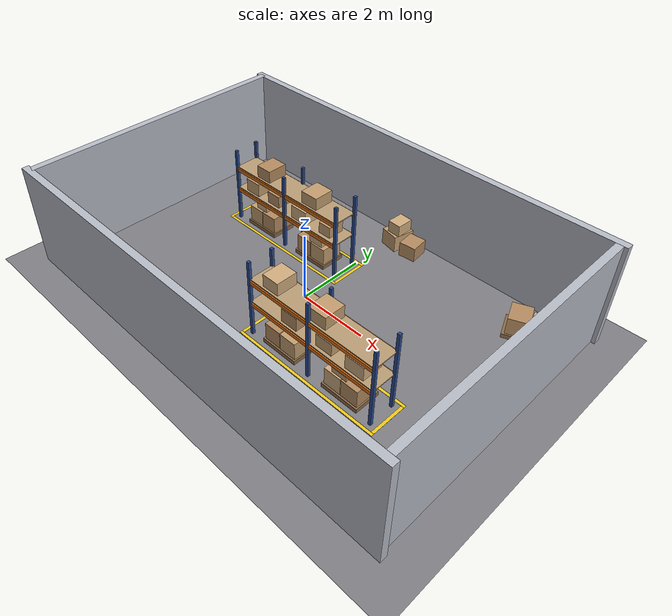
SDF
<?xml version="1.0"?>
<sdf version="1.10">
  <world name="warehouse">

    <physics name="1ms" type="ignored">
      <max_step_size>0.001</max_step_size>
      <real_time_factor>1.0</real_time_factor>
    </physics>

    <!-- standard gz-sim systems (physics, commands, rendering, sensors, imu) -->
    <plugin filename="gz-sim-physics-system" name="gz::sim::systems::Physics"/>
    <plugin filename="gz-sim-user-commands-system" name="gz::sim::systems::UserCommands"/>
    <plugin filename="gz-sim-scene-broadcaster-system" name="gz::sim::systems::SceneBroadcaster"/>
    <plugin filename="gz-sim-sensors-system" name="gz::sim::systems::Sensors">
      <render_engine>ogre2</render_engine>
    </plugin>
    <plugin filename="gz-sim-imu-system" name="gz::sim::systems::Imu"/>

    <scene>
      <ambient>0.4 0.4 0.4 1</ambient>
      <background>0.55 0.6 0.65 1</background>
    </scene>

    <light type="directional" name="sun">
      <cast_shadows>true</cast_shadows>
      <pose>0 0 10 0 0 0</pose>
      <diffuse>0.7 0.7 0.68 1</diffuse>
      <specular>0.2 0.2 0.2 1</specular>
      <direction>-0.4 0.2 -0.9</direction>
    </light>
    <light type="point" name="hall_light_west">
      <cast_shadows>false</cast_shadows>
      <pose>-3 0 2.7 0 0 0</pose>
      <diffuse>1.0 0.97 0.88 1</diffuse>
      <specular>0.1 0.1 0.1 1</specular>
      <attenuation><range>15</range><constant>0.4</constant><linear>0.08</linear><quadratic>0.01</quadratic></attenuation>
    </light>
    <light type="point" name="hall_light_east">
      <cast_shadows>false</cast_shadows>
      <pose>3 0 2.7 0 0 0</pose>
      <diffuse>1.0 0.97 0.88 1</diffuse>
      <specular>0.1 0.1 0.1 1</specular>
      <attenuation><range>15</range><constant>0.4</constant><linear>0.08</linear><quadratic>0.01</quadratic></attenuation>
    </light>

    <!-- concrete floor -->
    <model name="ground_plane">
      <static>true</static>
      <link name="link">
        <collision name="collision">
          <geometry><plane><normal>0 0 1</normal><size>100 100</size></plane></geometry>
        </collision>
        <visual name="visual">
          <geometry><plane><normal>0 0 1</normal><size>100 100</size></plane></geometry>
          <material><ambient>0.5 0.5 0.52 1</ambient><diffuse>0.5 0.5 0.52 1</diffuse><specular>0.05 0.05 0.05 1</specular></material>
        </visual>
      </link>
    </model>

    <!-- yellow floor markings (visual only, no collision — lidar/physics ignore them) -->
    <model name="floor_markings">
      <static>true</static>
      <link name="l">
        <!-- rack A zone -->
        <visual name="a_s"><pose>-2 0.95 0.0015 0 0 0</pose><geometry><box><size>4.4 0.08 0.003</size></box></geometry>
          <material><ambient>0.95 0.8 0.1 1</ambient><diffuse>0.95 0.8 0.1 1</diffuse></material></visual>
        <visual name="a_n"><pose>-2 2.05 0.0015 0 0 0</pose><geometry><box><size>4.4 0.08 0.003</size></box></geometry>
          <material><ambient>0.95 0.8 0.1 1</ambient><diffuse>0.95 0.8 0.1 1</diffuse></material></visual>
        <visual name="a_w"><pose>-4.16 1.5 0.0015 0 0 0</pose><geometry><box><size>0.08 1.18 0.003</size></box></geometry>
          <material><ambient>0.95 0.8 0.1 1</ambient><diffuse>0.95 0.8 0.1 1</diffuse></material></visual>
        <visual name="a_e"><pose>0.16 1.5 0.0015 0 0 0</pose><geometry><box><size>0.08 1.18 0.003</size></box></geometry>
          <material><ambient>0.95 0.8 0.1 1</ambient><diffuse>0.95 0.8 0.1 1</diffuse></material></visual>
        <!-- rack B zone -->
        <visual name="b_s"><pose>2 -2.05 0.0015 0 0 0</pose><geometry><box><size>4.4 0.08 0.003</size></box></geometry>
          <material><ambient>0.95 0.8 0.1 1</ambient><diffuse>0.95 0.8 0.1 1</diffuse></material></visual>
        <visual name="b_n"><pose>2 -0.95 0.0015 0 0 0</pose><geometry><box><size>4.4 0.08 0.003</size></box></geometry>
          <material><ambient>0.95 0.8 0.1 1</ambient><diffuse>0.95 0.8 0.1 1</diffuse></material></visual>
        <visual name="b_w"><pose>-0.16 -1.5 0.0015 0 0 0</pose><geometry><box><size>0.08 1.18 0.003</size></box></geometry>
          <material><ambient>0.95 0.8 0.1 1</ambient><diffuse>0.95 0.8 0.1 1</diffuse></material></visual>
        <visual name="b_e"><pose>4.16 -1.5 0.0015 0 0 0</pose><geometry><box><size>0.08 1.18 0.003</size></box></geometry>
          <material><ambient>0.95 0.8 0.1 1</ambient><diffuse>0.95 0.8 0.1 1</diffuse></material></visual>
        <!-- dock apron hatching in front of the east dock door -->
        <visual name="dock_1"><pose>5.4 0 0.0015 0 0 0</pose><geometry><box><size>0.08 2.6 0.003</size></box></geometry>
          <material><ambient>0.95 0.8 0.1 1</ambient><diffuse>0.95 0.8 0.1 1</diffuse></material></visual>
      </link>
    </model>

    <!-- outer walls: 12m x 8m room, 3m high -->
    <model name="wall_north"><static>true</static><pose>0 4 1.5 0 0 0</pose>
      <link name="l"><collision name="c"><geometry><box><size>12.4 0.2 3</size></box></geometry></collision>
        <visual name="v"><geometry><box><size>12.4 0.2 3</size></box></geometry>
          <material><ambient>0.72 0.74 0.78 1</ambient><diffuse>0.72 0.74 0.78 1</diffuse></material></visual></link></model>
    <model name="wall_south"><static>true</static><pose>0 -4 1.5 0 0 0</pose>
      <link name="l"><collision name="c"><geometry><box><size>12.4 0.2 3</size></box></geometry></collision>
        <visual name="v"><geometry><box><size>12.4 0.2 3</size></box></geometry>
          <material><ambient>0.72 0.74 0.78 1</ambient><diffuse>0.72 0.74 0.78 1</diffuse></material></visual></link></model>
    <model name="wall_east"><static>true</static><pose>6 0 1.5 0 0 0</pose>
      <link name="l"><collision name="c"><geometry><box><size>0.2 8 3</size></box></geometry></collision>
        <visual name="v"><geometry><box><size>0.2 8 3</size></box></geometry>
          <material><ambient>0.72 0.74 0.78 1</ambient><diffuse>0.72 0.74 0.78 1</diffuse></material></visual></link></model>
    <model name="wall_west"><static>true</static><pose>-6 0 1.5 0 0 0</pose>
      <link name="l"><collision name="c"><geometry><box><size>0.2 8 3</size></box></geometry></collision>
        <visual name="v"><geometry><box><size>0.2 8 3</size></box></geometry>
          <material><ambient>0.72 0.74 0.78 1</ambient><diffuse>0.72 0.74 0.78 1</diffuse></material></visual></link></model>

    <!-- roller dock door on the east wall (visual only, sits on the inner face) -->
    <model name="dock_door_east">
      <static>true</static><pose>5.885 0 0 0 0 0</pose>
      <link name="l">
        <visual name="panel"><pose>0 0 1.1 0 0 0</pose><geometry><box><size>0.03 2.6 2.2</size></box></geometry>
          <material><ambient>0.42 0.47 0.52 1</ambient><diffuse>0.42 0.47 0.52 1</diffuse></material></visual>
        <visual name="lintel"><pose>0 0 2.3 0 0 0</pose><geometry><box><size>0.05 2.8 0.2</size></box></geometry>
          <material><ambient>0.3 0.34 0.38 1</ambient><diffuse>0.3 0.34 0.38 1</diffuse></material></visual>
      </link>
    </model>

    <!-- ============ RACK A (center -2, 1.5) ============ -->
    <model name="rack_a">
      <static>true</static><pose>-2 1.5 0 0 0 0</pose>
      <link name="l">
        <!-- one simple collision box for the whole rack -->
        <collision name="c"><pose>0 0 1.15 0 0 0</pose><geometry><box><size>4.0 0.8 2.3</size></box></geometry></collision>
        <!-- steel uprights (3 frames x 2 posts) -->
        <visual name="p1"><pose>-1.96 -0.36 1.15 0 0 0</pose><geometry><box><size>0.08 0.08 2.3</size></box></geometry>
          <material><ambient>0.16 0.28 0.55 1</ambient><diffuse>0.16 0.28 0.55 1</diffuse></material></visual>
        <visual name="p2"><pose>-1.96 0.36 1.15 0 0 0</pose><geometry><box><size>0.08 0.08 2.3</size></box></geometry>
          <material><ambient>0.16 0.28 0.55 1</ambient><diffuse>0.16 0.28 0.55 1</diffuse></material></visual>
        <visual name="p3"><pose>0 -0.36 1.15 0 0 0</pose><geometry><box><size>0.08 0.08 2.3</size></box></geometry>
          <material><ambient>0.16 0.28 0.55 1</ambient><diffuse>0.16 0.28 0.55 1</diffuse></material></visual>
        <visual name="p4"><pose>0 0.36 1.15 0 0 0</pose><geometry><box><size>0.08 0.08 2.3</size></box></geometry>
          <material><ambient>0.16 0.28 0.55 1</ambient><diffuse>0.16 0.28 0.55 1</diffuse></material></visual>
        <visual name="p5"><pose>1.96 -0.36 1.15 0 0 0</pose><geometry><box><size>0.08 0.08 2.3</size></box></geometry>
          <material><ambient>0.16 0.28 0.55 1</ambient><diffuse>0.16 0.28 0.55 1</diffuse></material></visual>
        <visual name="p6"><pose>1.96 0.36 1.15 0 0 0</pose><geometry><box><size>0.08 0.08 2.3</size></box></geometry>
          <material><ambient>0.16 0.28 0.55 1</ambient><diffuse>0.16 0.28 0.55 1</diffuse></material></visual>
        <!-- orange beams, two levels -->
        <visual name="bm1f"><pose>0 -0.36 1.0 0 0 0</pose><geometry><box><size>3.92 0.07 0.1</size></box></geometry>
          <material><ambient>0.9 0.45 0.08 1</ambient><diffuse>0.9 0.45 0.08 1</diffuse></material></visual>
        <visual name="bm1b"><pose>0 0.36 1.0 0 0 0</pose><geometry><box><size>3.92 0.07 0.1</size></box></geometry>
          <material><ambient>0.9 0.45 0.08 1</ambient><diffuse>0.9 0.45 0.08 1</diffuse></material></visual>
        <visual name="bm2f"><pose>0 -0.36 1.7 0 0 0</pose><geometry><box><size>3.92 0.07 0.1</size></box></geometry>
          <material><ambient>0.9 0.45 0.08 1</ambient><diffuse>0.9 0.45 0.08 1</diffuse></material></visual>
        <visual name="bm2b"><pose>0 0.36 1.7 0 0 0</pose><geometry><box><size>3.92 0.07 0.1</size></box></geometry>
          <material><ambient>0.9 0.45 0.08 1</ambient><diffuse>0.9 0.45 0.08 1</diffuse></material></visual>
        <!-- plywood decks -->
        <visual name="dk1"><pose>0 0 1.065 0 0 0</pose><geometry><box><size>3.92 0.72 0.03</size></box></geometry>
          <material><ambient>0.73 0.62 0.46 1</ambient><diffuse>0.73 0.62 0.46 1</diffuse></material></visual>
        <visual name="dk2"><pose>0 0 1.765 0 0 0</pose><geometry><box><size>3.92 0.72 0.03</size></box></geometry>
          <material><ambient>0.73 0.62 0.46 1</ambient><diffuse>0.73 0.62 0.46 1</diffuse></material></visual>
        <!-- ground level: wooden pallets + cardboard (this level must stay full: the lidar scans it) -->
        <visual name="pal1"><pose>-1.0 0 0.06 0 0 0</pose><geometry><box><size>1.1 0.75 0.12</size></box></geometry>
          <material><ambient>0.55 0.42 0.28 1</ambient><diffuse>0.55 0.42 0.28 1</diffuse></material></visual>
        <visual name="pal2"><pose>1.0 0 0.06 0 0 0</pose><geometry><box><size>1.1 0.75 0.12</size></box></geometry>
          <material><ambient>0.55 0.42 0.28 1</ambient><diffuse>0.55 0.42 0.28 1</diffuse></material></visual>
        <visual name="gb1"><pose>-1.26 0 0.37 0 0 0</pose><geometry><box><size>0.5 0.65 0.5</size></box></geometry>
          <material><ambient>0.77 0.62 0.44 1</ambient><diffuse>0.77 0.62 0.44 1</diffuse></material></visual>
        <visual name="gb2"><pose>-0.74 0 0.37 0 0 0</pose><geometry><box><size>0.5 0.65 0.5</size></box></geometry>
          <material><ambient>0.71 0.55 0.38 1</ambient><diffuse>0.71 0.55 0.38 1</diffuse></material></visual>
        <visual name="gb3"><pose>-1.1 0 0.795 0 0 0</pose><geometry><box><size>0.4 0.5 0.35</size></box></geometry>
          <material><ambient>0.82 0.68 0.5 1</ambient><diffuse>0.82 0.68 0.5 1</diffuse></material></visual>
        <visual name="gb4"><pose>0.74 0 0.37 0 0 0</pose><geometry><box><size>0.5 0.65 0.5</size></box></geometry>
          <material><ambient>0.71 0.55 0.38 1</ambient><diffuse>0.71 0.55 0.38 1</diffuse></material></visual>
        <visual name="gb5"><pose>1.26 0 0.37 0 0 0</pose><geometry><box><size>0.5 0.65 0.5</size></box></geometry>
          <material><ambient>0.77 0.62 0.44 1</ambient><diffuse>0.77 0.62 0.44 1</diffuse></material></visual>
        <visual name="gb6"><pose>1.15 0 0.795 0 0 0</pose><geometry><box><size>0.45 0.55 0.35</size></box></geometry>
          <material><ambient>0.82 0.68 0.5 1</ambient><diffuse>0.82 0.68 0.5 1</diffuse></material></visual>
        <!-- level-1 cargo -->
        <visual name="s1b1"><pose>-1.4 0 1.28 0 0 0</pose><geometry><box><size>0.5 0.6 0.4</size></box></geometry>
          <material><ambient>0.77 0.62 0.44 1</ambient><diffuse>0.77 0.62 0.44 1</diffuse></material></visual>
        <visual name="s1b2"><pose>-0.55 0 1.26 0 0 0</pose><geometry><box><size>0.45 0.55 0.36</size></box></geometry>
          <material><ambient>0.71 0.55 0.38 1</ambient><diffuse>0.71 0.55 0.38 1</diffuse></material></visual>
        <visual name="s1b3"><pose>0.5 0 1.28 0 0 0</pose><geometry><box><size>0.55 0.6 0.4</size></box></geometry>
          <material><ambient>0.82 0.68 0.5 1</ambient><diffuse>0.82 0.68 0.5 1</diffuse></material></visual>
        <visual name="s1b4"><pose>1.45 0 1.25 0 0 0</pose><geometry><box><size>0.4 0.5 0.34</size></box></geometry>
          <material><ambient>0.77 0.62 0.44 1</ambient><diffuse>0.77 0.62 0.44 1</diffuse></material></visual>
        <!-- level-2 cargo -->
        <visual name="s2b1"><pose>-0.9 0 1.96 0 0 0</pose><geometry><box><size>0.5 0.6 0.36</size></box></geometry>
          <material><ambient>0.71 0.55 0.38 1</ambient><diffuse>0.71 0.55 0.38 1</diffuse></material></visual>
        <visual name="s2b2"><pose>0.9 0 1.96 0 0 0</pose><geometry><box><size>0.55 0.6 0.36</size></box></geometry>
          <material><ambient>0.77 0.62 0.44 1</ambient><diffuse>0.77 0.62 0.44 1</diffuse></material></visual>
      </link>
    </model>

    <!-- ============ RACK B (center 2, -1.5; rotated 180° for variety) ============ -->
    <model name="rack_b">
      <static>true</static><pose>2 -1.5 0 0 0 3.14159</pose>
      <link name="l">
        <collision name="c"><pose>0 0 1.15 0 0 0</pose><geometry><box><size>4.0 0.8 2.3</size></box></geometry></collision>
        <visual name="p1"><pose>-1.96 -0.36 1.15 0 0 0</pose><geometry><box><size>0.08 0.08 2.3</size></box></geometry>
          <material><ambient>0.16 0.28 0.55 1</ambient><diffuse>0.16 0.28 0.55 1</diffuse></material></visual>
        <visual name="p2"><pose>-1.96 0.36 1.15 0 0 0</pose><geometry><box><size>0.08 0.08 2.3</size></box></geometry>
          <material><ambient>0.16 0.28 0.55 1</ambient><diffuse>0.16 0.28 0.55 1</diffuse></material></visual>
        <visual name="p3"><pose>0 -0.36 1.15 0 0 0</pose><geometry><box><size>0.08 0.08 2.3</size></box></geometry>
          <material><ambient>0.16 0.28 0.55 1</ambient><diffuse>0.16 0.28 0.55 1</diffuse></material></visual>
        <visual name="p4"><pose>0 0.36 1.15 0 0 0</pose><geometry><box><size>0.08 0.08 2.3</size></box></geometry>
          <material><ambient>0.16 0.28 0.55 1</ambient><diffuse>0.16 0.28 0.55 1</diffuse></material></visual>
        <visual name="p5"><pose>1.96 -0.36 1.15 0 0 0</pose><geometry><box><size>0.08 0.08 2.3</size></box></geometry>
          <material><ambient>0.16 0.28 0.55 1</ambient><diffuse>0.16 0.28 0.55 1</diffuse></material></visual>
        <visual name="p6"><pose>1.96 0.36 1.15 0 0 0</pose><geometry><box><size>0.08 0.08 2.3</size></box></geometry>
          <material><ambient>0.16 0.28 0.55 1</ambient><diffuse>0.16 0.28 0.55 1</diffuse></material></visual>
        <visual name="bm1f"><pose>0 -0.36 1.0 0 0 0</pose><geometry><box><size>3.92 0.07 0.1</size></box></geometry>
          <material><ambient>0.9 0.45 0.08 1</ambient><diffuse>0.9 0.45 0.08 1</diffuse></material></visual>
        <visual name="bm1b"><pose>0 0.36 1.0 0 0 0</pose><geometry><box><size>3.92 0.07 0.1</size></box></geometry>
          <material><ambient>0.9 0.45 0.08 1</ambient><diffuse>0.9 0.45 0.08 1</diffuse></material></visual>
        <visual name="bm2f"><pose>0 -0.36 1.7 0 0 0</pose><geometry><box><size>3.92 0.07 0.1</size></box></geometry>
          <material><ambient>0.9 0.45 0.08 1</ambient><diffuse>0.9 0.45 0.08 1</diffuse></material></visual>
        <visual name="bm2b"><pose>0 0.36 1.7 0 0 0</pose><geometry><box><size>3.92 0.07 0.1</size></box></geometry>
          <material><ambient>0.9 0.45 0.08 1</ambient><diffuse>0.9 0.45 0.08 1</diffuse></material></visual>
        <visual name="dk1"><pose>0 0 1.065 0 0 0</pose><geometry><box><size>3.92 0.72 0.03</size></box></geometry>
          <material><ambient>0.73 0.62 0.46 1</ambient><diffuse>0.73 0.62 0.46 1</diffuse></material></visual>
        <visual name="dk2"><pose>0 0 1.765 0 0 0</pose><geometry><box><size>3.92 0.72 0.03</size></box></geometry>
          <material><ambient>0.73 0.62 0.46 1</ambient><diffuse>0.73 0.62 0.46 1</diffuse></material></visual>
        <visual name="pal1"><pose>-1.0 0 0.06 0 0 0</pose><geometry><box><size>1.1 0.75 0.12</size></box></geometry>
          <material><ambient>0.55 0.42 0.28 1</ambient><diffuse>0.55 0.42 0.28 1</diffuse></material></visual>
        <visual name="pal2"><pose>1.0 0 0.06 0 0 0</pose><geometry><box><size>1.1 0.75 0.12</size></box></geometry>
          <material><ambient>0.55 0.42 0.28 1</ambient><diffuse>0.55 0.42 0.28 1</diffuse></material></visual>
        <visual name="gb1"><pose>-1.26 0 0.37 0 0 0</pose><geometry><box><size>0.5 0.65 0.5</size></box></geometry>
          <material><ambient>0.71 0.55 0.38 1</ambient><diffuse>0.71 0.55 0.38 1</diffuse></material></visual>
        <visual name="gb2"><pose>-0.74 0 0.37 0 0 0</pose><geometry><box><size>0.5 0.65 0.5</size></box></geometry>
          <material><ambient>0.82 0.68 0.5 1</ambient><diffuse>0.82 0.68 0.5 1</diffuse></material></visual>
        <visual name="gb3"><pose>-0.9 0 0.795 0 0 0</pose><geometry><box><size>0.45 0.55 0.35</size></box></geometry>
          <material><ambient>0.77 0.62 0.44 1</ambient><diffuse>0.77 0.62 0.44 1</diffuse></material></visual>
        <visual name="gb4"><pose>0.74 0 0.37 0 0 0</pose><geometry><box><size>0.5 0.65 0.5</size></box></geometry>
          <material><ambient>0.77 0.62 0.44 1</ambient><diffuse>0.77 0.62 0.44 1</diffuse></material></visual>
        <visual name="gb5"><pose>1.26 0 0.37 0 0 0</pose><geometry><box><size>0.5 0.65 0.5</size></box></geometry>
          <material><ambient>0.71 0.55 0.38 1</ambient><diffuse>0.71 0.55 0.38 1</diffuse></material></visual>
        <visual name="s1b1"><pose>-1.35 0 1.28 0 0 0</pose><geometry><box><size>0.55 0.6 0.4</size></box></geometry>
          <material><ambient>0.82 0.68 0.5 1</ambient><diffuse>0.82 0.68 0.5 1</diffuse></material></visual>
        <visual name="s1b2"><pose>-0.4 0 1.26 0 0 0</pose><geometry><box><size>0.5 0.55 0.36</size></box></geometry>
          <material><ambient>0.77 0.62 0.44 1</ambient><diffuse>0.77 0.62 0.44 1</diffuse></material></visual>
        <visual name="s1b3"><pose>0.7 0 1.28 0 0 0</pose><geometry><box><size>0.5 0.6 0.4</size></box></geometry>
          <material><ambient>0.71 0.55 0.38 1</ambient><diffuse>0.71 0.55 0.38 1</diffuse></material></visual>
        <visual name="s2b1"><pose>-0.2 0 1.96 0 0 0</pose><geometry><box><size>0.55 0.6 0.36</size></box></geometry>
          <material><ambient>0.77 0.62 0.44 1</ambient><diffuse>0.77 0.62 0.44 1</diffuse></material></visual>
        <visual name="s2b2"><pose>1.3 0 1.96 0 0 0</pose><geometry><box><size>0.5 0.6 0.36</size></box></geometry>
          <material><ambient>0.82 0.68 0.5 1</ambient><diffuse>0.82 0.68 0.5 1</diffuse></material></visual>
      </link>
    </model>

    <!-- staging pallets (simple collision = their footprint) -->
    <model name="staging_sw">
      <static>true</static><pose>-4.8 -3.0 0 0 0 1.5708</pose>
      <link name="l">
        <collision name="c"><pose>0 0 0.45 0 0 0</pose><geometry><box><size>1.1 0.75 0.9</size></box></geometry></collision>
        <visual name="pal"><pose>0 0 0.06 0 0 0</pose><geometry><box><size>1.1 0.75 0.12</size></box></geometry>
          <material><ambient>0.55 0.42 0.28 1</ambient><diffuse>0.55 0.42 0.28 1</diffuse></material></visual>
        <visual name="b1"><pose>-0.25 0 0.37 0 0 0</pose><geometry><box><size>0.5 0.65 0.5</size></box></geometry>
          <material><ambient>0.77 0.62 0.44 1</ambient><diffuse>0.77 0.62 0.44 1</diffuse></material></visual>
        <visual name="b2"><pose>0.27 0 0.34 0 0 0</pose><geometry><box><size>0.45 0.6 0.44</size></box></geometry>
          <material><ambient>0.71 0.55 0.38 1</ambient><diffuse>0.71 0.55 0.38 1</diffuse></material></visual>
        <visual name="b3"><pose>0 0 0.795 0 0 0</pose><geometry><box><size>0.45 0.55 0.35</size></box></geometry>
          <material><ambient>0.82 0.68 0.5 1</ambient><diffuse>0.82 0.68 0.5 1</diffuse></material></visual>
      </link>
    </model>
    <model name="staging_ne">
      <static>true</static><pose>4.8 3.0 0 0 0 0.4</pose>
      <link name="l">
        <collision name="c"><pose>0 0 0.35 0 0 0</pose><geometry><box><size>1.1 0.75 0.7</size></box></geometry></collision>
        <visual name="pal"><pose>0 0 0.06 0 0 0</pose><geometry><box><size>1.1 0.75 0.12</size></box></geometry>
          <material><ambient>0.55 0.42 0.28 1</ambient><diffuse>0.55 0.42 0.28 1</diffuse></material></visual>
        <visual name="b1"><pose>-0.2 0 0.37 0 0 0</pose><geometry><box><size>0.55 0.65 0.5</size></box></geometry>
          <material><ambient>0.71 0.55 0.38 1</ambient><diffuse>0.71 0.55 0.38 1</diffuse></material></visual>
        <visual name="b2"><pose>0.3 0 0.32 0 0 0</pose><geometry><box><size>0.4 0.55 0.4</size></box></geometry>
          <material><ambient>0.82 0.68 0.5 1</ambient><diffuse>0.82 0.68 0.5 1</diffuse></material></visual>
      </link>
    </model>
    <!-- loose box pile against the north wall -->
    <model name="box_pile_north">
      <static>true</static><pose>0.5 3.45 0 0 0 -0.2</pose>
      <link name="l">
        <collision name="c"><pose>0 0 0.3 0 0 0</pose><geometry><box><size>1.2 0.7 0.6</size></box></geometry></collision>
        <visual name="b1"><pose>-0.3 0 0.25 0 0 0</pose><geometry><box><size>0.55 0.65 0.5</size></box></geometry>
          <material><ambient>0.77 0.62 0.44 1</ambient><diffuse>0.77 0.62 0.44 1</diffuse></material></visual>
        <visual name="b2"><pose>0.3 0.05 0.22 0 0 0.3</pose><geometry><box><size>0.5 0.55 0.44</size></box></geometry>
          <material><ambient>0.71 0.55 0.38 1</ambient><diffuse>0.71 0.55 0.38 1</diffuse></material></visual>
        <visual name="b3"><pose>-0.25 0 0.675 0 0 0.15</pose><geometry><box><size>0.4 0.5 0.35</size></box></geometry>
          <material><ambient>0.82 0.68 0.5 1</ambient><diffuse>0.82 0.68 0.5 1</diffuse></material></visual>
      </link>
    </model>

  </world>
</sdf>
